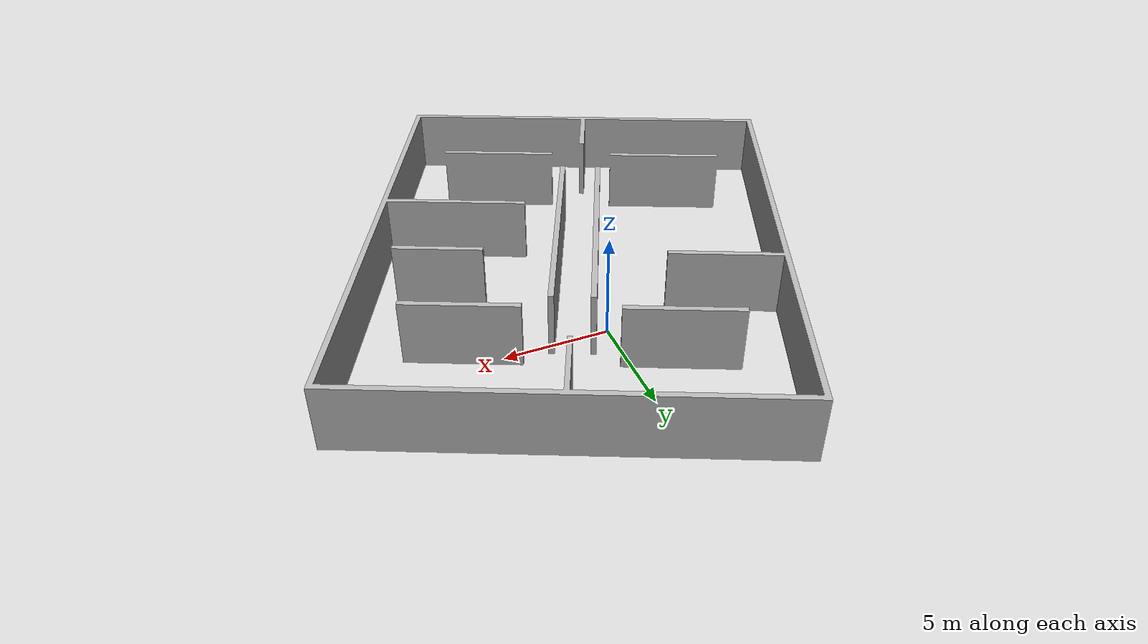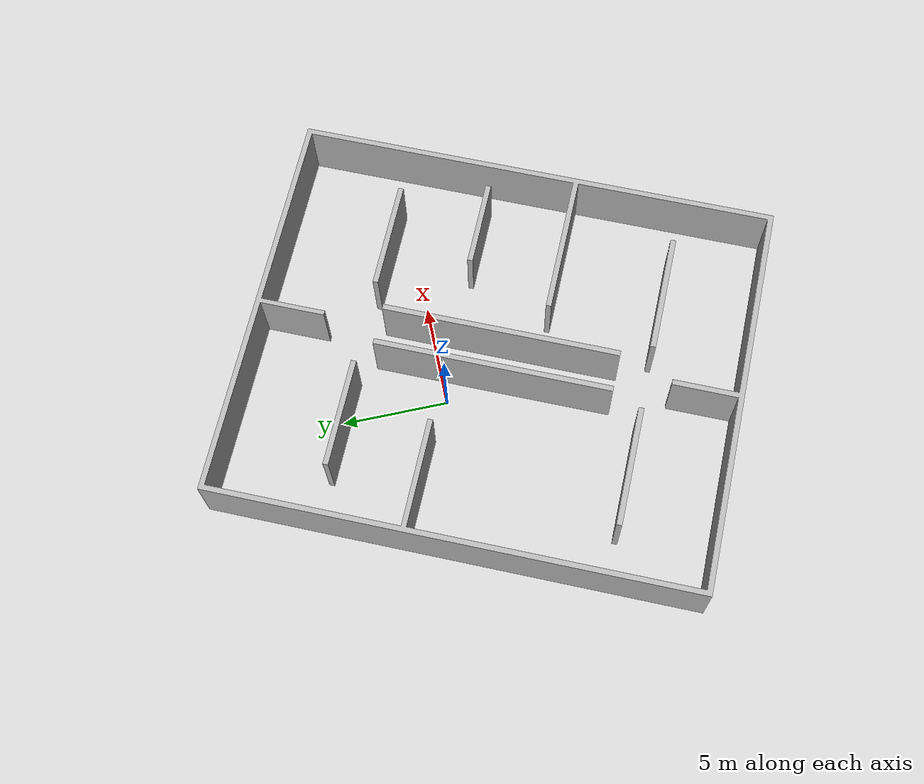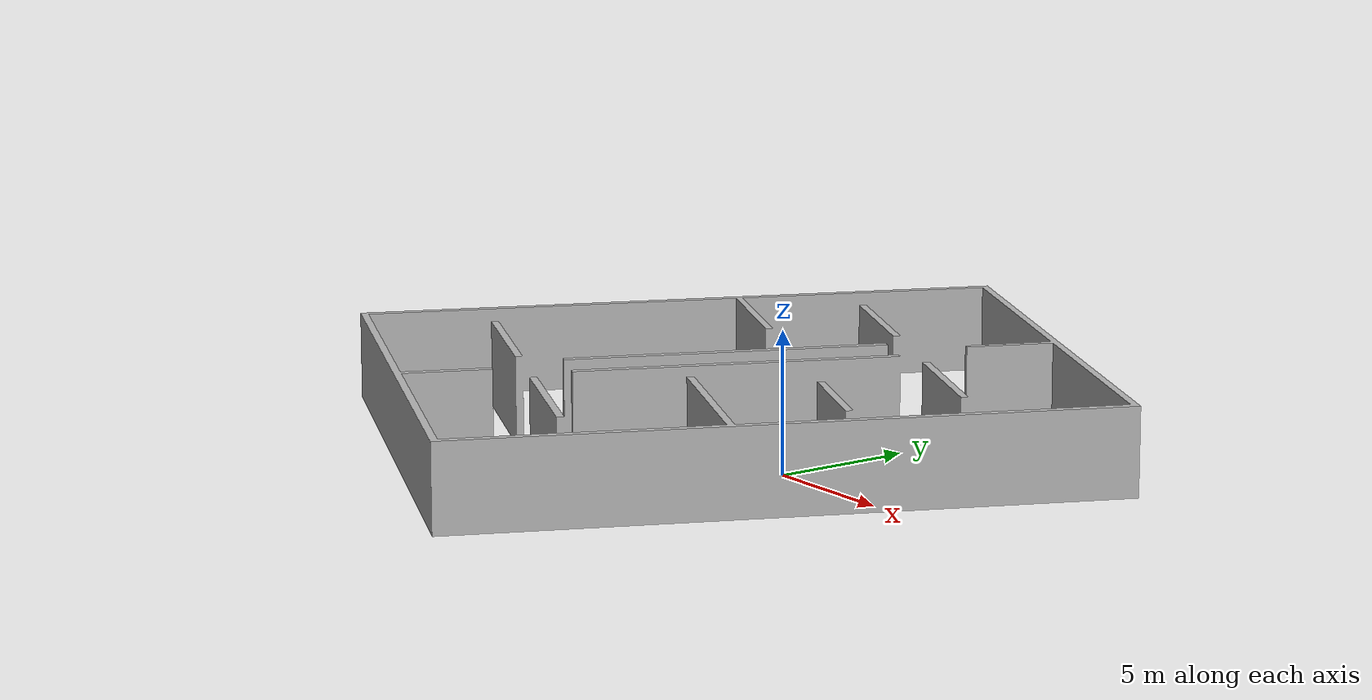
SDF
<?xml version="1.0"?>
<sdf version="1.4">
  <world name="default">
    <scene>
      <ambient>1 1 1 1</ambient>
      <background>0 0 0 1</background>
      <shadows>false</shadows>
      <grid>false</grid>
    </scene>
    <include>
      <uri>model://sun</uri>
    </include>
    <include>
      <uri>model://room</uri>
      <pose>0.5 -2.5 1.52 0 0 1.15</pose>
    </include>

    <model name="ground_plane_small">
    <static>true</static>
    <link name="link">
      <collision name="collision">
        <pose>0 0 -0.025 0 0 0</pose>
        <geometry>
          <box>
            <size>1 1 0.05</size>
          </box>
        </geometry>
        <surface>
          <friction>
            <ode>
              <mu>100</mu>
              <mu2>50</mu2>
            </ode>
          </friction>
        </surface>
      </collision>
    </link>
  </model>

  </world>
</sdf>

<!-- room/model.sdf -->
<sdf version="1.5">
  <model name="room">
      <pose>0 0 0  0 0 0</pose>
      <static>true</static>
      <link name="body">
        <visual name="visual">
          <geometry>
            <mesh><uri>model://room/meshes/room.dae</uri></mesh>
          </geometry>
        </visual>
        <collision name="collision">
            <geometry>
                <mesh>
                    <uri>model://room/meshes/room.dae</uri>
                </mesh>
            </geometry>
        </collision>
      </link>
    </model>
</sdf>
